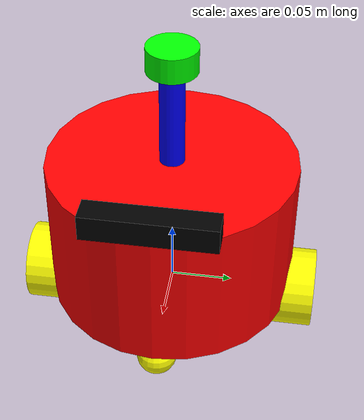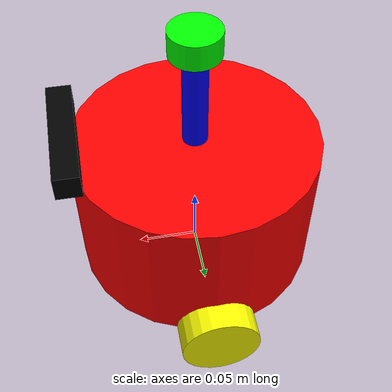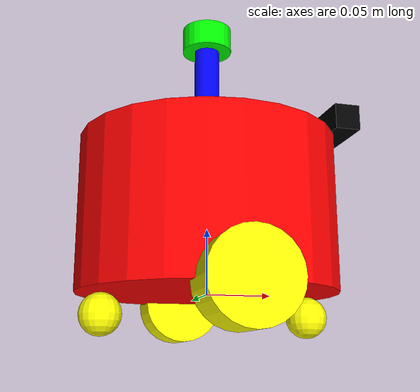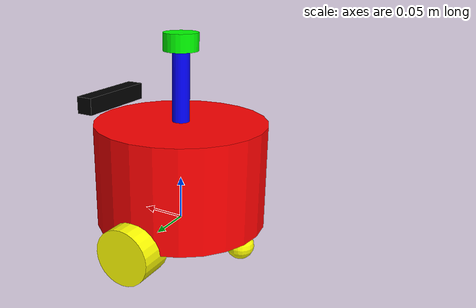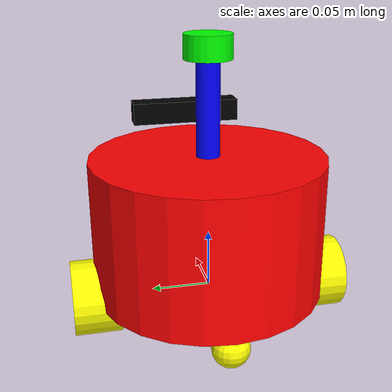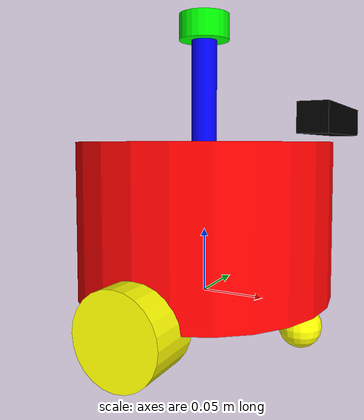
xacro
<?xml version="1.0"?>
<robot xmlns:xacro="http://www.ros.org/wiki/xacro" name="fishbot">

<!-- 找到share目录下的该包:$(find fishbot_description) -->

<!-- 通用颜色 -->
<xacro:include filename="$(find fishbot_description)/urdf/fishbot/common/common_colors.xacro"/>

<!-- 基座base部分 -->
<xacro:include filename="$(find fishbot_description)/urdf/fishbot/base.urdf.xacro"/>
<!-- 传感器senser部分 -->
<xacro:include filename="$(find fishbot_description)/urdf/fishbot/senser/imu.urdf.xacro"/>
<xacro:include filename="$(find fishbot_description)/urdf/fishbot/senser/laser.urdf.xacro"/>
<xacro:include filename="$(find fishbot_description)/urdf/fishbot/senser/camera.urdf.xacro"/>
<!-- 执行器actuator部分 -->
<xacro:include filename="$(find fishbot_description)/urdf/fishbot/actuator/wheel.urdf.xacro"/>
<xacro:include filename="$(find fishbot_description)/urdf/fishbot/actuator/caster.urdf.xacro"/>
<!-- 插件:双轮差速、传感器（雷达、imu） -->
<!-- ros2_control和gazebo_control同时出现，会产生冲突 -->
<xacro:include filename="$(find fishbot_description)/urdf/fishbot/plugins/gazebo_sensor_plugin.xacro"/>
<!-- 硬件控制ros2_control -->
<xacro:include filename="$(find fishbot_description)/urdf/fishbot/fishbot.ros2_control.xacro"/>

<!-- 基座 -->
<xacro:base_xacro length="0.12" radius="0.10"/>

<!-- 传感器 -->
<xacro:imu_xacro xyz="0.0 0.0 0.02"/>
<xacro:camera_xacro xyz="0.10 0.0 0.075"/>
<xacro:laser_xacro xyz="0.0 0.0 0.10"/>

<!-- 执行器 -->
<xacro:wheel_xacro wheel_name="left_wheel" xyz="0 0.10 -0.06" />
<xacro:wheel_xacro wheel_name="right_wheel" xyz="0 -0.10 -0.06" />
<xacro:caster_xacro caster_name="front_caster" xyz="0.08 0.0 -0.076" />
<xacro:caster_xacro caster_name="back_caster" xyz="-0.08 0.0 -0.076" />

<!-- 插件:双轮差速、传感器（雷达） -->
<xacro:gazebo_sensor_plugin />

<!-- ros2_control控制 -->
<xacro:fishbot_ros2_control />

</robot>

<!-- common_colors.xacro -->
<robot xmlns:xacro="http://www.ros.org/wiki/xacro">

    <!-- 机器人颜色定义文件 Robot Color Definitions -->

    <!-- 基础颜色 Basic Colors -->
    <material name="red_material">
        <color rgba="1.0 0.0 0.0 1.0"/>
    </material>

    <material name="blue_material">
        <color rgba="0.0 0.0 1.0 1.0"/>
    </material>

    <material name="green_material">
        <color rgba="0.0 1.0 0.0 1.0"/>
    </material>

    <material name="yellow_material">
        <color rgba="1.0 1.0 0.0 1.0"/>
    </material>

    <material name="orange_material">
        <color rgba="1.0 0.5 0.0 1.0"/>
    </material>

    <material name="purple_material">
        <color rgba="0.5 0.0 0.5 1.0"/>
    </material>

    <material name="pink_material">
        <color rgba="1.0 0.5 0.8 1.0"/>
    </material>

    <material name="cyan_material">
        <color rgba="0.0 1.0 1.0 1.0"/>
    </material>

    <!-- 深色系列 Dark Colors -->
    <material name="dark_red_material">
        <color rgba="0.8 0.0 0.0 1.0"/>
    </material>

    <material name="dark_blue_material">
        <color rgba="0.0 0.0 0.8 1.0"/>
    </material>

    <material name="dark_green_material">
        <color rgba="0.0 0.8 0.0 1.0"/>
    </material>

    <material name="dark_yellow_material">
        <color rgba="0.8 0.8 0.0 1.0"/>
    </material>

    <!-- 浅色系列 Light Colors -->
    <material name="light_red_material">
        <color rgba="1.0 0.5 0.5 1.0"/>
    </material>

    <material name="light_blue_material">
        <color rgba="0.5 0.5 1.0 1.0"/>
    </material>

    <material name="light_green_material">
        <color rgba="0.5 1.0 0.5 1.0"/>
    </material>

    <material name="light_yellow_material">
        <color rgba="1.0 1.0 0.5 1.0"/>
    </material>

    <!-- 灰度系列 Gray Scale -->
    <material name="white_material">
        <color rgba="1.0 1.0 1.0 1.0"/>
    </material>

    <material name="light_gray_material">
        <color rgba="0.8 0.8 0.8 1.0"/>
    </material>

    <material name="gray_material">
        <color rgba="0.5 0.5 0.5 1.0"/>
    </material>

    <material name="dark_gray_material">
        <color rgba="0.3 0.3 0.3 1.0"/>
    </material>

    <material name="black_material">
        <color rgba="0.0 0.0 0.0 1.0"/>
    </material>

    <!-- 金属色 Metallic Colors -->
    <material name="gold_material">
        <color rgba="1.0 0.8 0.0 1.0"/>
    </material>

    <material name="silver_material">
        <color rgba="0.75 0.75 0.75 1.0"/>
    </material>

    <material name="bronze_material">
        <color rgba="0.8 0.5 0.2 1.0"/>
    </material>

    <material name="copper_material">
        <color rgba="0.7 0.4 0.1 1.0"/>
    </material>

    <!-- 机器人专用色 Robot Specific Colors -->
    <material name="robot_base_material">
        <color rgba="0.2 0.2 0.2 1.0"/>
    </material>

    <material name="wheel_material">
        <color rgba="0.1 0.1 0.1 1.0"/>
    </material>

    <material name="sensor_material">
        <color rgba="0.0 0.3 0.8 1.0"/>
    </material>

    <material name="lidar_material">
        <color rgba="0.8 0.0 0.0 1.0"/>
    </material>

    <material name="camera_material">
        <color rgba="0.1 0.1 0.1 1.0"/>
    </material>

    <!-- 特殊颜色 Special Colors -->
    <material name="sky_blue_material">
        <color rgba="0.5 0.8 1.0 1.0"/>
    </material>

    <material name="forest_green_material">
        <color rgba="0.2 0.8 0.2 1.0"/>
    </material>

    <material name="hot_pink_material">
        <color rgba="1.0 0.4 0.7 1.0"/>
    </material>

    <material name="magenta_material">
        <color rgba="1.0 0.0 1.0 1.0"/>
    </material>

    <!-- 半透明色 Transparent Colors -->
    <material name="transparent_red_material">
        <color rgba="1.0 0.0 0.0 0.5"/>
    </material>

    <material name="transparent_blue_material">
        <color rgba="0.0 0.0 1.0 0.5"/>
    </material>

    <material name="transparent_green_material">
        <color rgba="0.0 1.0 0.0 0.5"/>
    </material>

    <material name="transparent_yellow_material">
        <color rgba="1.0 1.0 0.0 0.5"/>
    </material>

</robot>

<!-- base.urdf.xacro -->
<!-- base部分子文件 -->
<robot xmlns:xacro="http://www.ros.org/wiki/xacro">
    <xacro:include filename="$(find fishbot_description)/urdf/fishbot/common/common_inertia.xacro"/>

    <!-- 1.基本模型添加 -->
    <xacro:macro name="base_xacro" params="length radius">
        <!-- 1.1添加base_footprint链接作为根链接 -->
        <link name="base_footprint">
            <visual>
                <origin xyz="0 0 0" rpy="0 0 0"/>
                <geometry>
                    <box size="0.001 0.001 0.001"/>
                </geometry>
            </visual>
        </link>

        <!-- 1.2添加base_joint连接base_footprint到base_link -->
        <joint name="base_joint" type="fixed">
            <parent link="base_footprint"/>
            <child link="base_link"/>
            <origin xyz="0.0 0.0 ${length/2}" rpy="0 0 0"/>
        </joint>

        <link name="base_link">
            <visual>
                <origin xyz="0 0 0" rpy="0 0 0"/>
                <geometry>
                    <cylinder radius="${radius}" length="${length}"/>
                </geometry>
                <material name="red_material"/>
            </visual>

            <!-- 2.碰撞属性collision添加 -->
            <collision>
                <origin xyz="0 0 0" rpy="0 0 0"/>
                <geometry>
                    <cylinder radius="${radius}" length="${length}"/>
                </geometry>
                <material name="red_material"/>
            </collision>

            <!-- 3.质量和惯性属性添加 -->
            <xacro:cylinder_inertia m="1.0" r="${radius}" h="${length}"/>
        </link>

        <!-- 4.gazebo中显示，扩展URDF文件 -->
        <gazebo reference="base_link">
            <material>Gazebo/Red</material>
        </gazebo>

    </xacro:macro>
</robot>

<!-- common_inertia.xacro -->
<robot xmlns:xacro="http://ros.org/wiki/xacro">

  <xacro:macro name="box_inertia" params="l w h m">
    <inertial>
      <!-- Mass of the box -->
      <mass value="${m}" />

      <!-- Inertia tensor components -->
      <inertia
        ixx="${(m/12) * (h*h + w*w)}"
        ixy="0.0"
        ixz="0.0"
        iyy="${(m/12) * (l*l + h*h)}"
        iyz="0.0"
        izz="${(m/12) * (l*l + w*w)}" />
    </inertial>
  </xacro:macro>

  <xacro:macro name="cylinder_inertia" params="m r h">
    <inertial>
      <!-- Mass of the cylinder -->
      <mass value="${m}" />

      <!-- Inertia tensor components -->
      <inertia
        ixx="${(m/12) * (3*r*r + h*h)}"
        ixy="0"
        ixz="0"
        iyy="${(m/12) * (3*r*r + h*h)}"
        iyz="0"
        izz="${(m/2) * (r*r)}" />
    </inertial>
  </xacro:macro>

  <xacro:macro name="sphere_inertia" params="m r">
    <inertial>
      <!-- Mass of the sphere -->
      <mass value="${m}" />

      <!-- Inertia tensor components -->
      <inertia
        ixx="${(2/5) * m * (r*r)}"
        ixy="0.0"
        ixz="0.0"
        iyy="${(2/5) * m * (r*r)}"
        iyz="0.0"
        izz="${(2/5) * m * (r*r)}" />
    </inertial>
  </xacro:macro>

</robot>

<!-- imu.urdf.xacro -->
<!-- 机器人imu惯性测量模块 -->
<robot xmlns:xacro="http://www.ros.org/wiki/xacro">
    <xacro:include filename="$(find fishbot_description)/urdf/fishbot/common/common_inertia.xacro"/>

    <!-- 1.基本模型添加 -->
    <xacro:macro name="imu_xacro" params="xyz">
        <link name="imu_link">
            <visual>
                <origin xyz="0 0 0" rpy="0 0 0"/>
                <geometry>
                    <box size="0.02 0.02 0.02"/>
                </geometry>
                <material name="black_material"/>
            </visual>

            <!-- 2.碰撞属性collision添加 -->
            <collision>
                <origin xyz="0 0 0" rpy="0 0 0"/>
                <geometry>
                    <box size="0.02 0.02 0.02"/>
                </geometry>
                <material name="black_material"/>
            </collision>

            <!-- 3.质量和惯性属性添加 -->
            <xacro:box_inertia m="0.05" w="0.02" h="0.02" l="0.02" />
        </link>

        <joint name="imu_joint" type="fixed">
            <parent link="base_link"/>
            <child link="imu_link"/>
            <origin xyz="${xyz}" rpy="0 0 0"/>
        </joint>

        <!-- 4.gazebo中显示，扩展URDF文件 -->
        <gazebo reference="imu_link">
            <material>Gazebo/Black</material>
        </gazebo>

    </xacro:macro>
</robot>

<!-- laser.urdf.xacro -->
<!-- 机器人laser雷达模块 -->
<robot xmlns:xacro="http://www.ros.org/wiki/xacro">
    <xacro:include filename="$(find fishbot_description)/urdf/fishbot/common/common_inertia.xacro"/>

    <!-- 1.基本模型添加 -->
    <xacro:macro name="laser_xacro" params="xyz">
        <!-- 1.1雷达支撑杆 -->
        <link name="laser_cylinder_link">
            <visual>
                <origin xyz="0 0 0" rpy="0 0 0"/>
                <geometry>
                    <cylinder radius="0.01" length="0.1"/>
                </geometry>
                <material name="blue_material"/>
            </visual>

            <!-- 2.1碰撞属性collision添加 -->
            <collision>
                <origin xyz="0 0 0" rpy="0 0 0"/>
                <geometry>
                    <cylinder radius="0.01" length="0.1"/>
                </geometry>
                <material name="blue_material"/>
            </collision>

            <!-- 3.1质量和惯性属性添加 -->
            <xacro:cylinder_inertia m="0.05" r="0.01" h="0.10"/>
        </link>

        <!-- 1.2雷达 -->
        <link name="laser_link">
            <visual>
                <origin xyz="0 0 0" rpy="0 0 0"/>
                <geometry>
                    <cylinder radius="0.02" length="0.02"/>
                </geometry>
                <material name="green_material"/>
            </visual>

            <!-- 2.2碰撞属性collision添加 -->
            <collision>
                <origin xyz="0 0 0" rpy="0 0 0"/>
                <geometry>
                    <cylinder radius="0.02" length="0.02"/>
                </geometry>
                <material name="green_material"/>
            </collision>

            <!-- 3.2质量和惯性属性添加 -->
            <xacro:cylinder_inertia m="0.10" r="0.02" h="0.02"/>
        </link>

        <!-- 4.1雷达固定到支撑杆上 -->
        <joint name="laser_joint" type="fixed">
            <parent link="laser_cylinder_link"/>
            <child link="laser_link"/>
            <origin xyz="0.0 0.0 0.05" rpy="0 0 0"/>
        </joint>

        <!-- 4.2雷达支撑杆固定到base_link -->
        <joint name="laser_cylinder_joint" type="fixed">
            <parent link="base_link"/>
            <child link="laser_cylinder_link"/>
            <!-- 用户自定义组装  雷达+雷达支撑杆的位置：${xyz}  -->
            <origin xyz="${xyz}" rpy="0 0 0"/>
        </joint>

        <!-- 5.gazebo中显示，扩展URDF文件 -->
        <gazebo reference="laser_cylinder_link">
            <material>Gazebo/Blue</material>
        </gazebo>
        <gazebo reference="laser_link">
            <material>Gazebo/Green</material>
        </gazebo>

    </xacro:macro>
</robot>

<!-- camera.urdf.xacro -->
<!-- 机器人camera相机模块 -->
<robot xmlns:xacro="http://www.ros.org/wiki/xacro">
    <xacro:include filename="$(find fishbot_description)/urdf/fishbot/common/common_inertia.xacro"/>

    <!-- 1.基本模型添加 -->
    <xacro:macro name="camera_xacro" params="xyz">
        <link name="camera_link">
            <visual>
                <origin xyz="0 0 0" rpy="0 0 0"/>
                <geometry>
                    <box size="0.02 0.10 0.02"/>
                </geometry>
                <material name="black_material"/>
            </visual>

            <!-- 2.碰撞属性collision添加 -->
            <collision>
                <origin xyz="0 0 0" rpy="0 0 0"/>
                <geometry>
                    <box size="0.02 0.10 0.02"/>
                </geometry>
                <material name="black_material"/>
            </collision>

            <!-- 3.质量和惯性属性添加 -->
            <xacro:box_inertia m="0.1" w="0.02" l="0.01" h="0.02" />
        </link>

        <!-- 4.深度相机辅助link -->
        <link name="camera_optical_link"></link>

        <!-- 5.1 相机与底盘固定关节 -->
        <joint name="camera_joint" type="fixed">
            <parent link="base_link"/>
            <child link="camera_link"/>
            <origin xyz="${xyz}" rpy="0 0 0"/>
        </joint>

        <!-- 5.2 相机与辅助坐标系固定关节 -->
        <joint name="camera_optical_joint" type="fixed">
            <parent link="camera_link"/>
            <child link="camera_optical_link"/>
            <!-- 通过旋转修正坐标系，使其符合 ROS 相机标准坐标系 -->
            <origin xyz="0 0 0" rpy="${-pi/2} 0.0 ${-pi/2}"/>
        </joint>

        <!-- 6.gazebo中显示，扩展URDF文件 -->
        <gazebo reference="camera_link">
            <material>Gazebo/Black</material>
        </gazebo>

    </xacro:macro>
</robot>

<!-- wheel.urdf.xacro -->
<!-- 机器人wheel车轮模块 -->
<robot xmlns:xacro="http://www.ros.org/wiki/xacro">
    <xacro:include filename="$(find fishbot_description)/urdf/fishbot/common/common_inertia.xacro"/>

    <!-- 1.基本模型添加 -->
    <xacro:macro name="wheel_xacro" params="wheel_name xyz">
        <link name="${wheel_name}_link">
            <visual>
            <!-- 旋转90度 -->
                <origin xyz="0 0 0" rpy="1.57079 0 0"/>
                <geometry>
                    <cylinder radius="0.032" length="0.04"/>
                </geometry>
                <material name="yellow_material"/>
            </visual>

            <!-- 2.碰撞属性collision添加 -->
            <collision>
                <origin xyz="0 0 0" rpy="1.57079 0 0"/>
                <geometry>
                    <cylinder radius="0.032" length="0.04"/>
                </geometry>
                <material name="yellow_material"/>
            </collision>

            <!-- 3.质量和惯性属性添加 -->
            <xacro:cylinder_inertia m="0.05" r="0.032" h="0.04"/>
        </link>

        <joint name="${wheel_name}_joint" type="continuous">
            <parent link="base_link"/>
            <child link="${wheel_name}_link"/>
            <origin xyz="${xyz}" rpy="0 0 0"/>
            <!-- 绕哪个轴旋转:y轴 -->
            <axis xyz="0 1 0"/>
        </joint>

        <!-- 4.gazebo中显示，扩展URDF文件——给车轮添加物理属性(以下属性gazebo中默认为1.0) -->
        <gazebo reference="${wheel_name}_link">
            <material>Gazebo/Yellow</material>
            <!-- 切向摩擦系数 -->
            <mu1 value="20.0"/>
            <!-- 法向摩擦系数 -->
            <mu2 value="20.0"/>
            <!-- 接触刚度系数 -->
            <kp value="1000000000.0"/>
            <!-- 接触阻尼系数 -->
            <kd value="1.0"/>
        </gazebo>

    </xacro:macro>
</robot>

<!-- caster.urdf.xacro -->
<!-- 机器人caster万向轮模块 -->
<robot xmlns:xacro="http://www.ros.org/wiki/xacro">
    <xacro:include filename="$(find fishbot_description)/urdf/fishbot/common/common_inertia.xacro"/>

    <!-- 1.基本模型添加 -->
    <xacro:macro name="caster_xacro" params="caster_name xyz">
        <link name="${caster_name}_link">
            <visual>
                <origin xyz="0 0 0" rpy="0 0 0"/>
                <geometry>
                    <sphere radius="0.016"/>
                </geometry>
                <material name="yellow_material"/>
            </visual>

            <!-- 2.碰撞属性collision添加 -->
            <collision>
                <origin xyz="0 0 0" rpy="0 0 0"/>
                <geometry>
                    <sphere radius="0.016"/>
                </geometry>
                <material name="yellow_material"/>
            </collision>

            <!-- 3.质量和惯性属性添加 -->
            <xacro:sphere_inertia m="0.05" r="0.016" />
        </link>

        <joint name="${caster_name}_joint" type="fixed">
            <parent link="base_link"/>
            <child link="${caster_name}_link"/>
            <origin xyz="${xyz}" rpy="0 0 0"/>
        </joint>

        <!-- 4.gazebo中显示，扩展URDF文件 -->
        <gazebo reference="${caster_name}_link">
            <material>Gazebo/Yellow</material>
            <!-- 切向摩擦系数 -->
            <mu1 value="0.0"/>
            <!-- 法向摩擦系数 -->
            <mu2 value="0.0"/>
            <!-- 接触刚度系数 -->
            <kp value="1000000000.0"/>
            <!-- 接触阻尼系数 -->
            <kd value="1.0"/>
        </gazebo>

    </xacro:macro>
</robot>
